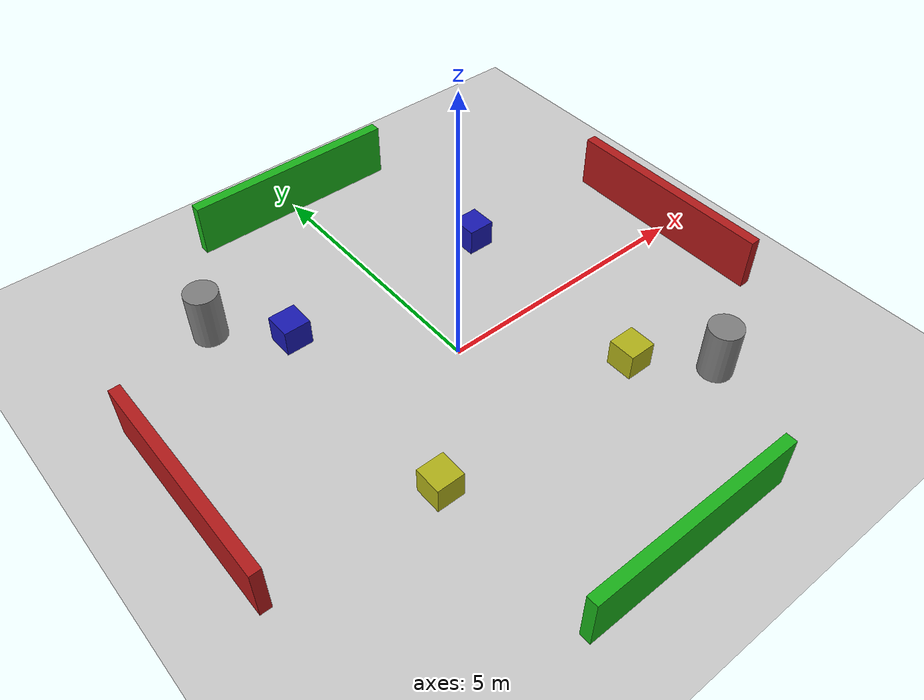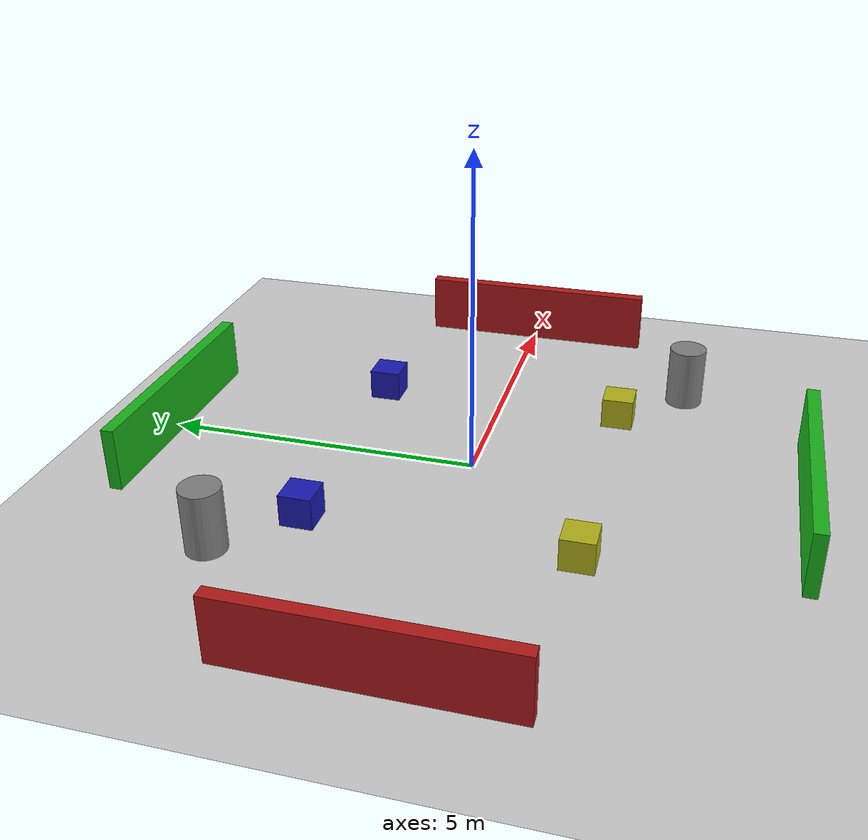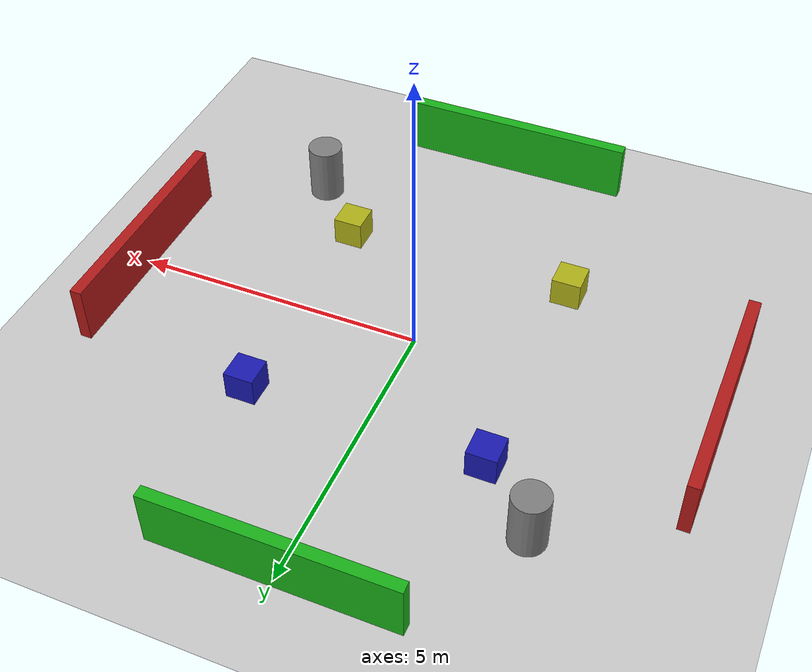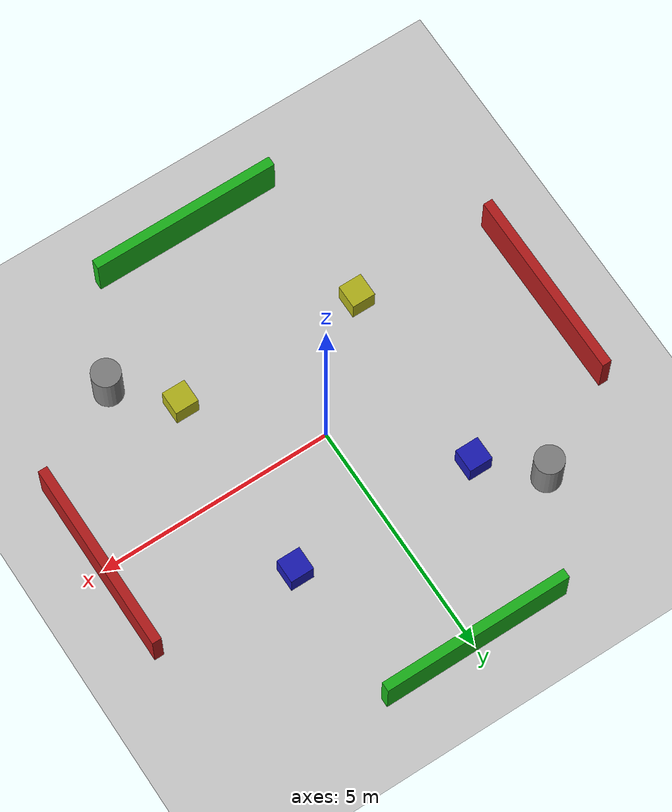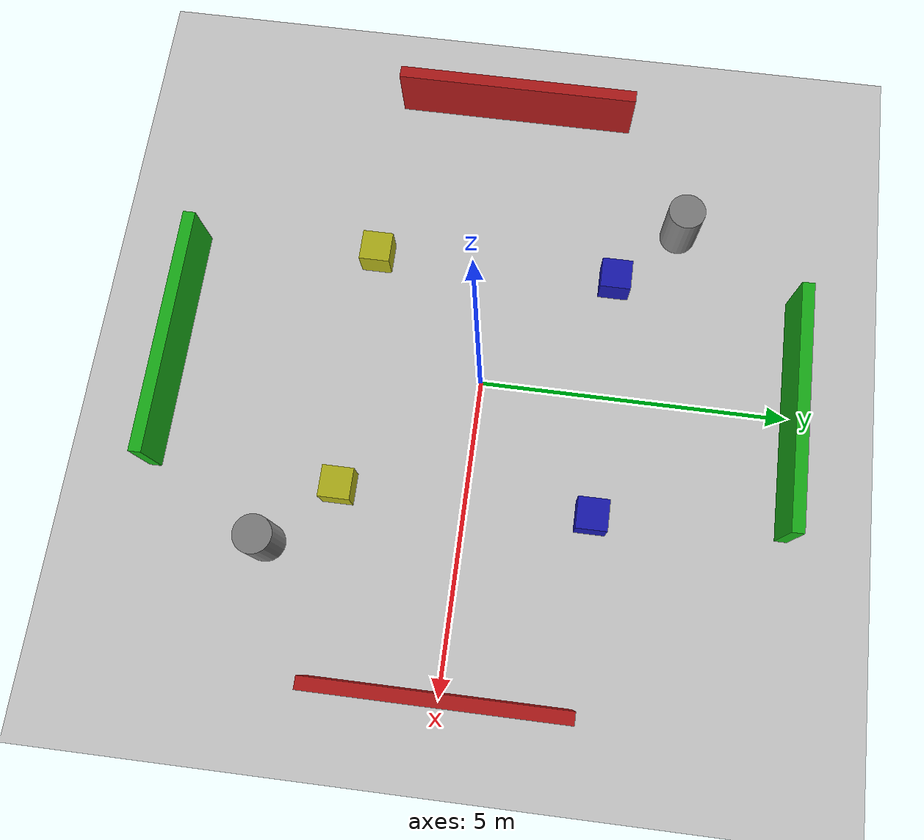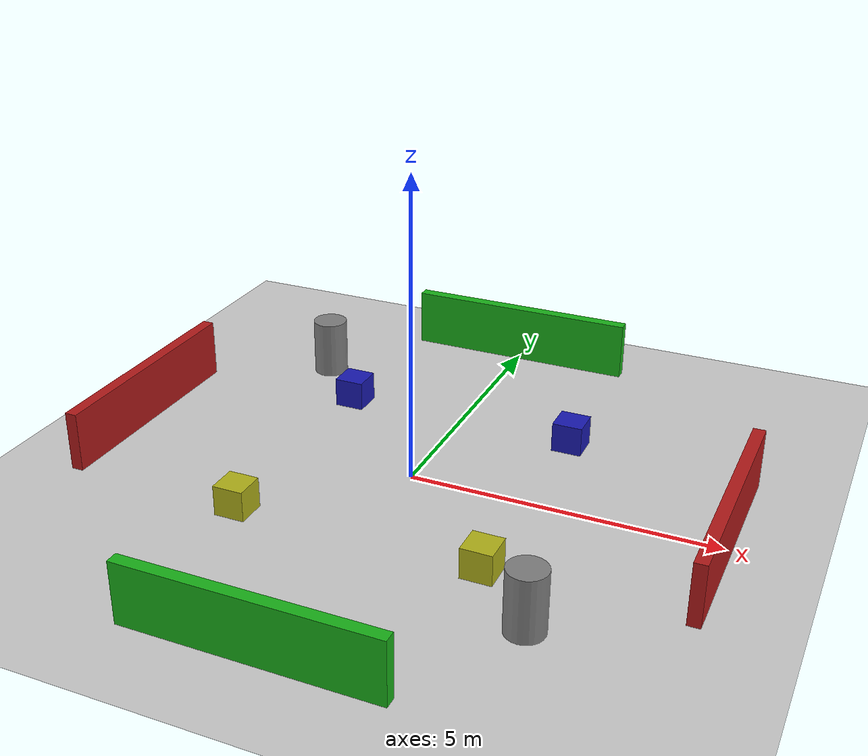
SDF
<?xml version="1.0" ?>
<sdf version="1.9">
  <world name="teknofest_world">

    <!-- Physics settings -->
    <physics name="1ms" type="ignored">
      <max_step_size>0.001</max_step_size>
      <real_time_factor>1.0</real_time_factor>
    </physics>

    <!-- Plugins -->
    <plugin
      filename="gz-sim-physics-system"
      name="gz::sim::systems::Physics">
    </plugin>
    <plugin
      filename="gz-sim-user-commands-system"
      name="gz::sim::systems::UserCommands">
    </plugin>
    <plugin
      filename="gz-sim-scene-broadcaster-system"
      name="gz::sim::systems::SceneBroadcaster">
    </plugin>
    <plugin
      filename="gz-sim-sensors-system"
      name="gz::sim::systems::Sensors">
      <render_engine>ogre</render_engine>
    </plugin>

    <!-- Lighting -->
    <light type="directional" name="sun">
      <cast_shadows>true</cast_shadows>
      <pose>0 0 10 0 0 0</pose>
      <diffuse>0.8 0.8 0.8 1</diffuse>
      <specular>0.2 0.2 0.2 1</specular>
      <attenuation>
        <range>1000</range>
        <constant>0.9</constant>
        <linear>0.01</linear>
        <quadratic>0.001</quadratic>
      </attenuation>
      <direction>-0.5 0.1 -0.9</direction>
    </light>

    <!-- Ground Plane -->
    <model name="ground_plane">
      <static>true</static>
      <link name="link">
        <collision name="collision">
          <geometry>
            <plane>
              <normal>0 0 1</normal>
              <size>100 100</size>
            </plane>
          </geometry>
        </collision>
        <visual name="visual">
          <geometry>
            <plane>
              <normal>0 0 1</normal>
              <size>100 100</size>
            </plane>
          </geometry>
          <material>
            <ambient>0.8 0.8 0.8 1</ambient>
            <diffuse>0.8 0.8 0.8 1</diffuse>
            <specular>0.8 0.8 0.8 1</specular>
          </material>
        </visual>
      </link>
    </model>

    <!-- Obstacles for Teknofest competition -->
    <!-- Wall 1 -->
    <model name="wall_1">
      <static>true</static>
      <pose>5 0 0.5 0 0 0</pose>
      <link name="link">
        <collision name="collision">
          <geometry>
            <box>
              <size>0.2 4 1</size>
            </box>
          </geometry>
        </collision>
        <visual name="visual">
          <geometry>
            <box>
              <size>0.2 4 1</size>
            </box>
          </geometry>
          <material>
            <ambient>0.7 0.1 0.1 1</ambient>
            <diffuse>0.7 0.1 0.1 1</diffuse>
          </material>
        </visual>
      </link>
    </model>

    <!-- Wall 2 -->
    <model name="wall_2">
      <static>true</static>
      <pose>-5 0 0.5 0 0 0</pose>
      <link name="link">
        <collision name="collision">
          <geometry>
            <box>
              <size>0.2 4 1</size>
            </box>
          </geometry>
        </collision>
        <visual name="visual">
          <geometry>
            <box>
              <size>0.2 4 1</size>
            </box>
          </geometry>
          <material>
            <ambient>0.7 0.1 0.1 1</ambient>
            <diffuse>0.7 0.1 0.1 1</diffuse>
          </material>
        </visual>
      </link>
    </model>

    <!-- Wall 3 -->
    <model name="wall_3">
      <static>true</static>
      <pose>0 5 0.5 0 0 1.5708</pose>
      <link name="link">
        <collision name="collision">
          <geometry>
            <box>
              <size>0.2 4 1</size>
            </box>
          </geometry>
        </collision>
        <visual name="visual">
          <geometry>
            <box>
              <size>0.2 4 1</size>
            </box>
          </geometry>
          <material>
            <ambient>0.1 0.7 0.1 1</ambient>
            <diffuse>0.1 0.7 0.1 1</diffuse>
          </material>
        </visual>
      </link>
    </model>

    <!-- Wall 4 -->
    <model name="wall_4">
      <static>true</static>
      <pose>0 -5 0.5 0 0 1.5708</pose>
      <link name="link">
        <collision name="collision">
          <geometry>
            <box>
              <size>0.2 4 1</size>
            </box>
          </geometry>
        </collision>
        <visual name="visual">
          <geometry>
            <box>
              <size>0.2 4 1</size>
            </box>
          </geometry>
          <material>
            <ambient>0.1 0.7 0.1 1</ambient>
            <diffuse>0.1 0.7 0.1 1</diffuse>
          </material>
        </visual>
      </link>
    </model>

    <!-- Obstacle boxes -->
    <model name="box_1">
      <static>true</static>
      <pose>2 2 0.25 0 0 0</pose>
      <link name="link">
        <collision name="collision">
          <geometry>
            <box>
              <size>0.5 0.5 0.5</size>
            </box>
          </geometry>
        </collision>
        <visual name="visual">
          <geometry>
            <box>
              <size>0.5 0.5 0.5</size>
            </box>
          </geometry>
          <material>
            <ambient>0.1 0.1 0.7 1</ambient>
            <diffuse>0.1 0.1 0.7 1</diffuse>
          </material>
        </visual>
      </link>
    </model>

    <model name="box_2">
      <static>true</static>
      <pose>-2 2 0.25 0 0 0</pose>
      <link name="link">
        <collision name="collision">
          <geometry>
            <box>
              <size>0.5 0.5 0.5</size>
            </box>
          </geometry>
        </collision>
        <visual name="visual">
          <geometry>
            <box>
              <size>0.5 0.5 0.5</size>
            </box>
          </geometry>
          <material>
            <ambient>0.1 0.1 0.7 1</ambient>
            <diffuse>0.1 0.1 0.7 1</diffuse>
          </material>
        </visual>
      </link>
    </model>

    <model name="box_3">
      <static>true</static>
      <pose>2 -2 0.25 0 0 0</pose>
      <link name="link">
        <collision name="collision">
          <geometry>
            <box>
              <size>0.5 0.5 0.5</size>
            </box>
          </geometry>
        </collision>
        <visual name="visual">
          <geometry>
            <box>
              <size>0.5 0.5 0.5</size>
            </box>
          </geometry>
          <material>
            <ambient>0.7 0.7 0.1 1</ambient>
            <diffuse>0.7 0.7 0.1 1</diffuse>
          </material>
        </visual>
      </link>
    </model>

    <model name="box_4">
      <static>true</static>
      <pose>-2 -2 0.25 0 0 0</pose>
      <link name="link">
        <collision name="collision">
          <geometry>
            <box>
              <size>0.5 0.5 0.5</size>
            </box>
          </geometry>
        </collision>
        <visual name="visual">
          <geometry>
            <box>
              <size>0.5 0.5 0.5</size>
            </box>
          </geometry>
          <material>
            <ambient>0.7 0.7 0.1 1</ambient>
            <diffuse>0.7 0.7 0.1 1</diffuse>
          </material>
        </visual>
      </link>
    </model>

    <!-- Cylindrical obstacles -->
    <model name="cylinder_1">
      <static>true</static>
      <pose>3 -3 0.5 0 0 0</pose>
      <link name="link">
        <collision name="collision">
          <geometry>
            <cylinder>
              <radius>0.3</radius>
              <length>1.0</length>
            </cylinder>
          </geometry>
        </collision>
        <visual name="visual">
          <geometry>
            <cylinder>
              <radius>0.3</radius>
              <length>1.0</length>
            </cylinder>
          </geometry>
          <material>
            <ambient>0.5 0.5 0.5 1</ambient>
            <diffuse>0.5 0.5 0.5 1</diffuse>
          </material>
        </visual>
      </link>
    </model>

    <model name="cylinder_2">
      <static>true</static>
      <pose>-3 3 0.5 0 0 0</pose>
      <link name="link">
        <collision name="collision">
          <geometry>
            <cylinder>
              <radius>0.3</radius>
              <length>1.0</length>
            </cylinder>
          </geometry>
        </collision>
        <visual name="visual">
          <geometry>
            <cylinder>
              <radius>0.3</radius>
              <length>1.0</length>
            </cylinder>
          </geometry>
          <material>
            <ambient>0.5 0.5 0.5 1</ambient>
            <diffuse>0.5 0.5 0.5 1</diffuse>
          </material>
        </visual>
      </link>
    </model>

  </world>
</sdf>
